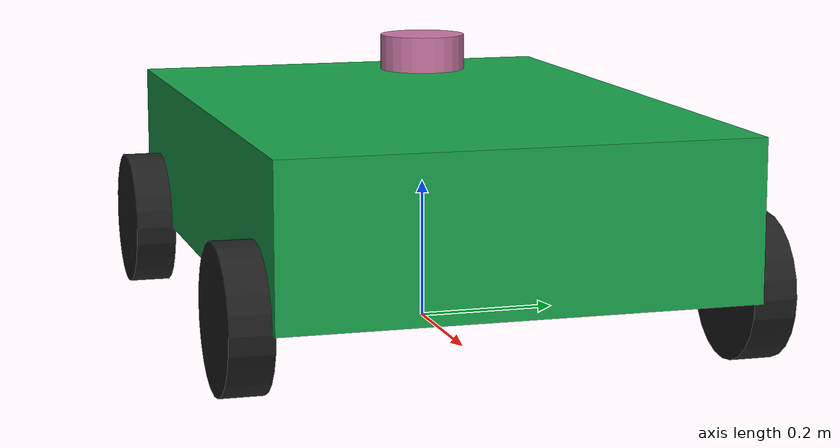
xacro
<?xml version="1.0"?>
<robot xmlns:xacro="http://www.ros.org/wiki/xacro"
       xmlns:gz="http://gazebosim.org/schema" name="mecanum_agv">
  <xacro:property name="wheel_radius" value="0.10"/>
  <xacro:property name="wheel_width" value="0.06"/>
  <link name="base_footprint"/>
  <link name="base_link">
    <visual><geometry><box size="0.95 0.65 0.22"/></geometry><material name="green"><color rgba="0.1 0.65 0.3 1"/></material></visual>
    <collision><geometry><box size="0.95 0.65 0.22"/></geometry></collision>
    <inertial><mass value="45"/><inertia ixx="2.1" ixy="0" ixz="0" iyy="3.8" iyz="0" izz="5.2"/></inertial>
  </link>
  <joint name="base_footprint_joint" type="fixed"><parent link="base_footprint"/><child link="base_link"/><origin xyz="0 0 0.21"/></joint>

  <xacro:macro name="mecanum_wheel" params="name x y traction">
    <link name="${name}_wheel">
      <visual><origin rpy="1.5708 0 0"/><geometry><cylinder radius="${wheel_radius}" length="${wheel_width}"/></geometry><material name="dark"><color rgba="0.12 0.12 0.12 1"/></material></visual>
      <collision><geometry><sphere radius="${wheel_radius}"/></geometry></collision>
      <inertial><mass value="1.2"/><inertia ixx="0.007" ixy="0" ixz="0" iyy="0.004" iyz="0" izz="0.007"/></inertial>
    </link>
    <joint name="${name}_wheel_joint" type="continuous">
      <parent link="base_link"/><child link="${name}_wheel"/><origin xyz="${x} ${y} -0.11"/><axis xyz="0 1 0"/><dynamics damping="0.03"/>
    </joint>
    <gazebo reference="${name}_wheel"><mu1>1.2</mu1><mu2>0.0</mu2><fdir1 gz:expressed_in="base_link">${traction}</fdir1></gazebo>
  </xacro:macro>
  <xacro:mecanum_wheel name="front_left"  x="0.36"  y="0.35"  traction="1 -1 0"/>
  <xacro:mecanum_wheel name="front_right" x="0.36"  y="-0.35" traction="1 1 0"/>
  <xacro:mecanum_wheel name="rear_left"   x="-0.36" y="0.35"  traction="1 1 0"/>
  <xacro:mecanum_wheel name="rear_right"  x="-0.36" y="-0.35" traction="1 -1 0"/>

  <link name="laser_frame"><visual><geometry><cylinder radius="0.06" length="0.05"/></geometry></visual><inertial><mass value="0.5"/><inertia ixx="0.001" ixy="0" ixz="0" iyy="0.001" iyz="0" izz="0.001"/></inertial></link>
  <joint name="laser_joint" type="fixed"><parent link="base_link"/><child link="laser_frame"/><origin xyz="0 0 0.18"/></joint>
  <link name="imu_link"/><joint name="imu_joint" type="fixed"><parent link="base_link"/><child link="imu_link"/></joint>
  <link name="gps_link"/><joint name="gps_joint" type="fixed"><parent link="base_link"/><child link="gps_link"/><origin xyz="0 0 0.22"/></joint>
  <gazebo reference="gps_link"><sensor name="gps" type="navsat"><topic>sensors/gps/fix</topic><update_rate>20</update_rate><always_on>true</always_on><navsat><position_sensing><horizontal><noise type="none"/></horizontal><vertical><noise type="none"/></vertical></position_sensing><velocity_sensing><horizontal><noise type="none"/></horizontal><vertical><noise type="none"/></vertical></velocity_sensing></navsat></sensor></gazebo>
  <gazebo reference="laser_frame"><sensor name="lidar" type="gpu_lidar"><topic>scan</topic><update_rate>10</update_rate><lidar><scan><horizontal><samples>720</samples><resolution>1</resolution><min_angle>-3.14159265</min_angle><max_angle>3.14159265</max_angle></horizontal></scan><range><min>0.10</min><max>20.0</max><resolution>0.01</resolution></range></lidar><always_on>true</always_on><visualize>true</visualize></sensor></gazebo>
  <gazebo>
    <plugin filename="gz-sim-mecanum-drive-system" name="gz::sim::systems::MecanumDrive">
      <front_left_joint>front_left_wheel_joint</front_left_joint>
      <front_right_joint>front_right_wheel_joint</front_right_joint>
      <back_left_joint>rear_left_wheel_joint</back_left_joint>
      <back_right_joint>rear_right_wheel_joint</back_right_joint>
      <wheel_separation>0.70</wheel_separation><wheelbase>0.72</wheelbase><wheel_radius>${wheel_radius}</wheel_radius>
      <min_acceleration>-2.0</min_acceleration><max_acceleration>2.0</max_acceleration>
    </plugin>
  </gazebo>
</robot>
